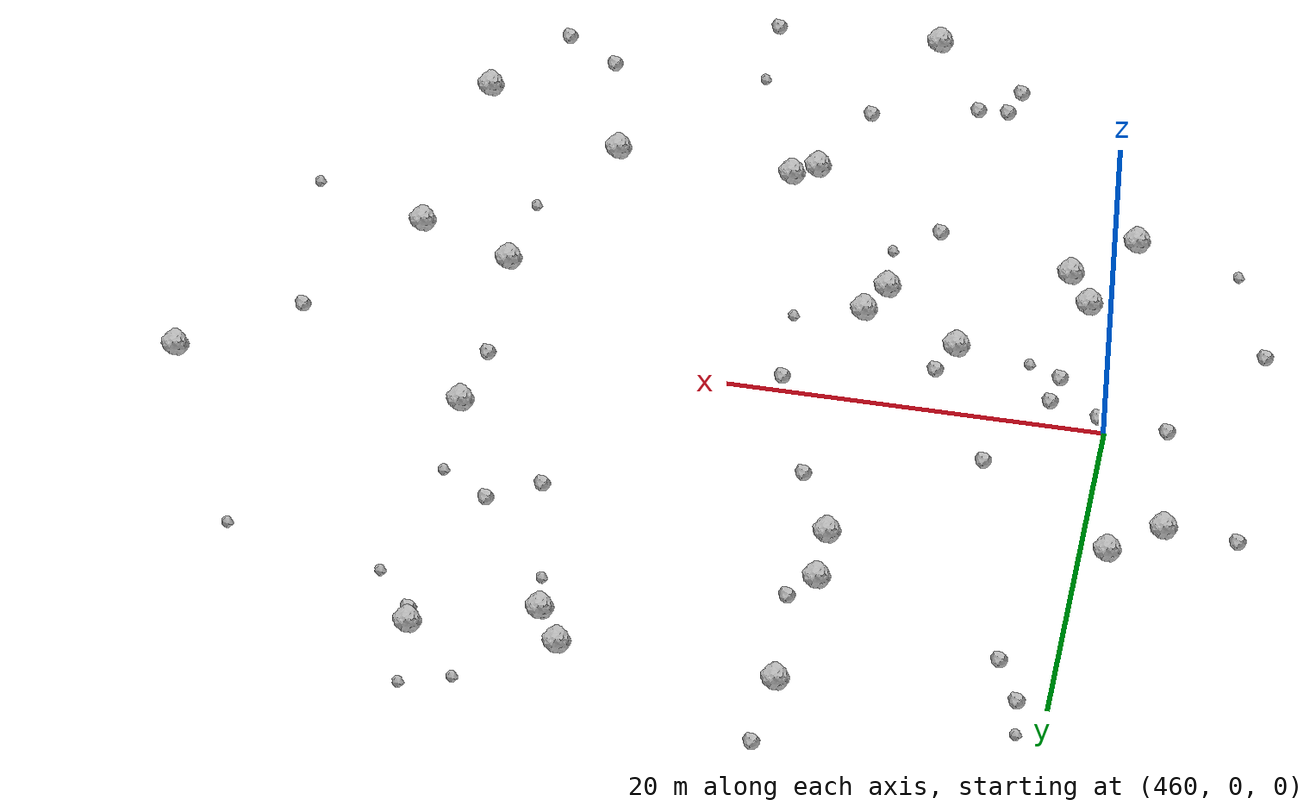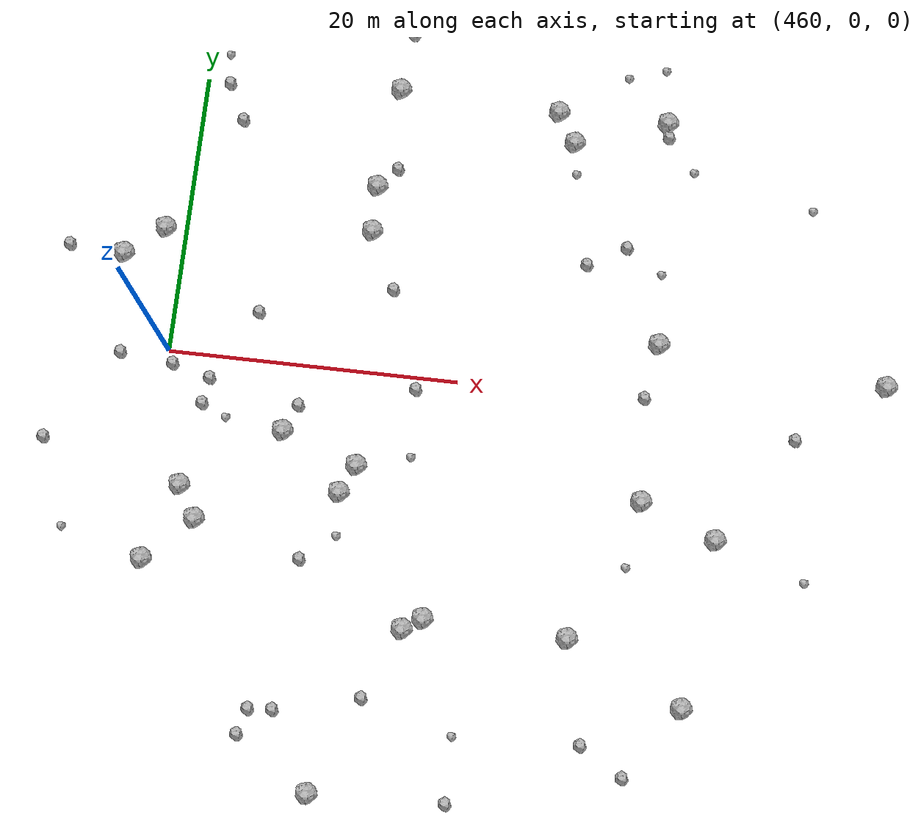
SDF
<sdf version="1.6">
 <world name="default">
  <include><uri>model://sun</uri></include>
  <model name="rock1_12_4">
   <include><uri>model://rock1</uri><pose>468.58519334569417 -4.7528659086077525 0.5 0 0 0</pose></include>
  </model>
  <model name="rock1_12_5">
   <include><uri>model://rock1</uri><pose>489.23447982621707 -16.67613384670812 0.5 0 0 0</pose></include>
  </model>
  <model name="rock1_12_6">
   <include><uri>model://rock1</uri><pose>473.6998508593819 20.625952948220366 0.5 0 0 0</pose></include>
  </model>
  <model name="rock1_12_7">
   <include><uri>model://rock1</uri><pose>458.6105150689158 8.671915470015165 0.5 0 0 0</pose></include>
  </model>
  <model name="rock1_12_8">
   <include><uri>model://rock1</uri><pose>484.98927642877237 20.176245233488665 0.5 0 0 0</pose></include>
  </model>
  <model name="rock1_12_9">
   <include><uri>model://rock1</uri><pose>492.69977116125625 20.196042283457444 0.5 0 0 0</pose></include>
  </model>
  <model name="rock1_12_10">
   <include><uri>model://rock1</uri><pose>479.53716323479443 -16.419427659446512 0.5 0 0 0</pose></include>
  </model>
  <model name="rock1_12_11">
   <include><uri>model://rock1</uri><pose>493.29072276907294 -6.942032475362961 0.5 0 0 0</pose></include>
  </model>
  <model name="rock1_12_12">
   <include><uri>model://rock1</uri><pose>473.8598755681741 -6.587318065051463 0.5 0 0 0</pose></include>
  </model>
  <model name="rock1_12_13">
   <include><uri>model://rock1</uri><pose>472.9337707891662 10.021353689172457 0.5 0 0 0</pose></include>
  </model>
  <model name="rock1_12_14">
   <include><uri>model://rock1</uri><pose>472.8919735709888 13.306827209010436 0.5 0 0 0</pose></include>
  </model>
  <model name="rock1_12_15">
   <include><uri>model://rock1</uri><pose>509.2419482391033 2.837020039158645 0.5 0 0 0</pose></include>
  </model>
  <model name="rock1_12_16">
   <include><uri>model://rock1</uri><pose>472.9291411666152 -8.565451312659313 0.5 0 0 0</pose></include>
  </model>
  <model name="rock1_12_17">
   <include><uri>model://rock1</uri><pose>463.44161621131235 -11.407953226224397 0.5 0 0 0</pose></include>
  </model>
  <model name="rock1_12_18">
   <include><uri>model://rock1</uri><pose>478.2397261404192 -17.25240326045043 0.5 0 0 0</pose></include>
  </model>
  <model name="rock1_12_19">
   <include><uri>model://rock1</uri><pose>486.30996328083154 18.03426167616518 0.5 0 0 0</pose></include>
  </model>
  <model name="rock1_12_20">
   <include><uri>model://rock1</uri><pose>473.3333820268339 -28.624142852523335 0.5 0 0 0</pose></include>
  </model>
  <model name="rock1_12_21">
   <include><uri>model://rock1</uri><pose>493.5072537604955 4.1073326719459615 0.5 0 0 0</pose></include>
  </model>
  <model name="rock1_12_22">
   <include><uri>model://rock1</uri><pose>455.9908833953335 6.5455240561551165 0.5 0 0 0</pose></include>
  </model>
  <model name="rock1_12_23">
   <include><uri>model://rock1</uri><pose>497.1889981351764 -20.440821864891184 0.5 0 0 0</pose></include>
  </model>
  <model name="rock1_12_24">
   <include><uri>model://rock1</uri><pose>462.1300709783216 -9.230006730868084 0.5 0 0 0</pose></include>
  </model>
  <model name="rock1_12_25">
   <include><uri>model://rock1</uri><pose>460.2926755876809 -14.485883366732047 0.5 0 0 0</pose></include>
  </model>
  <model name="rock1_12_26">
   <include><uri>model://rock1</uri><pose>498.4885325143125 -9.016792968844161 0.5 0 0 0</pose></include>
  </model>
  <model name="rock2_12_0">
   <include><uri>model://rock2</uri><pose>503.32456117536134 -1.5397153446551748 0.3 0 0 0</pose></include>
  </model>
  <model name="rock2_12_1">
   <include><uri>model://rock2</uri><pose>465.85735015061283 3.3608670651959045 0.3 0 0 0</pose></include>
  </model>
  <model name="rock2_12_2">
   <include><uri>model://rock2</uri><pose>462.826281354564 -3.432999607087737 0.3 0 0 0</pose></include>
  </model>
  <model name="rock2_12_3">
   <include><uri>model://rock2</uri><pose>470.81474500180093 -13.353665821529273 0.3 0 0 0</pose></include>
  </model>
  <model name="rock2_12_4">
   <include><uri>model://rock2</uri><pose>477.2364030336761 -0.8735769583242607 0.3 0 0 0</pose></include>
  </model>
  <model name="rock2_12_5">
   <include><uri>model://rock2</uri><pose>492.8566367085455 0.256001990106963 0.3 0 0 0</pose></include>
  </model>
  <model name="rock2_12_6">
   <include><uri>model://rock2</uri><pose>493.72004552134445 -25.35894949738229 0.3 0 0 0</pose></include>
  </model>
  <model name="rock2_12_7">
   <include><uri>model://rock2</uri><pose>470.3429206070589 -23.475334865297697 0.3 0 0 0</pose></include>
  </model>
  <model name="rock2_12_8">
   <include><uri>model://rock2</uri><pose>490.78899982842506 -23.55828234387795 0.3 0 0 0</pose></include>
  </model>
  <model name="rock2_12_9">
   <include><uri>model://rock2</uri><pose>468.2173583953871 -25.31572102675554 0.3 0 0 0</pose></include>
  </model>
  <model name="rock2_12_10">
   <include><uri>model://rock2</uri><pose>462.86386465932634 17.191816608430834 0.3 0 0 0</pose></include>
  </model>
  <model name="rock2_12_11">
   <include><uri>model://rock2</uri><pose>474.10771857109563 24.95013465425886 0.3 0 0 0</pose></include>
  </model>
  <model name="rock2_12_12">
   <include><uri>model://rock2</uri><pose>474.1484019482553 14.773598644520689 0.3 0 0 0</pose></include>
  </model>
  <model name="rock2_12_13">
   <include><uri>model://rock2</uri><pose>469.39867887810806 -2.867999004832516 0.3 0 0 0</pose></include>
  </model>
  <model name="rock2_12_14">
   <include><uri>model://rock2</uri><pose>490.67970840549924 10.789271287073468 0.3 0 0 0</pose></include>
  </model>
  <model name="rock2_12_15">
   <include><uri>model://rock2</uri><pose>456.7428313989925 -0.4932321083249711 0.3 0 0 0</pose></include>
  </model>
  <model name="rock2_12_16">
   <include><uri>model://rock2</uri><pose>463.0941620870735 -1.621706237574422 0.3 0 0 0</pose></include>
  </model>
  <model name="rock2_12_17">
   <include><uri>model://rock2</uri><pose>474.8793355592274 5.995310496595451 0.3 0 0 0</pose></include>
  </model>
  <model name="rock2_12_18">
   <include><uri>model://rock2</uri><pose>452.39661657891077 -6.943270576313523 0.3 0 0 0</pose></include>
  </model>
  <model name="rock2_12_19">
   <include><uri>model://rock2</uri><pose>488.0155771913023 9.277060315506738 0.3 0 0 0</pose></include>
  </model>
  <model name="rock2_12_20">
   <include><uri>model://rock2</uri><pose>492.86386406302506 19.210005696733695 0.3 0 0 0</pose></include>
  </model>
  <model name="rock2_12_21">
   <include><uri>model://rock2</uri><pose>460.43519231814054 -0.8865091983678255 0.3 0 0 0</pose></include>
  </model>
  <model name="rock2_12_22">
   <include><uri>model://rock2</uri><pose>461.57013185769654 19.802722891758293 0.3 0 0 0</pose></include>
  </model>
  <model name="rock2_12_23">
   <include><uri>model://rock2</uri><pose>476.0880110082615 -22.084703561038815 0.3 0 0 0</pose></include>
  </model>
  <model name="rock2_12_24">
   <include><uri>model://rock2</uri><pose>468.7211913478297 -23.588665967701704 0.3 0 0 0</pose></include>
  </model>
  <model name="rock2_12_25">
   <include><uri>model://rock2</uri><pose>452.11801048562074 6.793782091598153 0.3 0 0 0</pose></include>
  </model>
  <model name="rock2_12_26">
   <include><uri>model://rock2</uri><pose>482.37893726820687 -28.29618418690507 0.3 0 0 0</pose></include>
  </model>
  <model name="rock3_12_0">
   <include><uri>model://rock3</uri><pose>482.3141692556914 -23.942186395289124 0.2 0 0 0</pose></include>
  </model>
  <model name="rock3_12_1">
   <include><uri>model://rock3</uri><pose>489.6534783196892 23.322161784914037 0.2 0 0 0</pose></include>
  </model>
  <model name="rock3_12_2">
   <include><uri>model://rock3</uri><pose>494.844967632908 16.782066286971748 0.2 0 0 0</pose></include>
  </model>
  <model name="rock3_12_3">
   <include><uri>model://rock3</uri><pose>464.53689496257573 -4.260431332387572 0.2 0 0 0</pose></include>
  </model>
  <model name="rock3_12_4">
   <include><uri>model://rock3</uri><pose>461.2592795309958 21.96472128579996 0.2 0 0 0</pose></include>
  </model>
  <model name="rock3_12_5">
   <include><uri>model://rock3</uri><pose>473.0760290060725 -11.54411915537015 0.2 0 0 0</pose></include>
  </model>
  <model name="rock3_12_6">
   <include><uri>model://rock3</uri><pose>492.6651519467533 -11.521704425730029 0.2 0 0 0</pose></include>
  </model>
  <model name="rock3_12_7">
   <include><uri>model://rock3</uri><pose>486.64420545180377 15.76594053236957 0.2 0 0 0</pose></include>
  </model>
  <model name="rock3_12_8">
   <include><uri>model://rock3</uri><pose>493.23321519796997 9.124344274194101 0.2 0 0 0</pose></include>
  </model>
  <model name="rock3_12_9">
   <include><uri>model://rock3</uri><pose>454.5433769055616 -12.930157281658797 0.2 0 0 0</pose></include>
  </model>
  <model name="rock3_12_10">
   <include><uri>model://rock3</uri><pose>504.6421477200704 -11.231737118699982 0.2 0 0 0</pose></include>
  </model>
  <model name="rock3_12_11">
   <include><uri>model://rock3</uri><pose>492.2432336582737 24.169072720822555 0.2 0 0 0</pose></include>
  </model>
  <model name="rock3_12_12">
   <include><uri>model://rock3</uri><pose>477.44612496191104 -5.616550366640084 0.2 0 0 0</pose></include>
  </model>
  <model name="rock3_12_13">
   <include><uri>model://rock3</uri><pose>503.3489132443515 14.89787322069622 0.2 0 0 0</pose></include>
  </model>
 </world>
</sdf>
